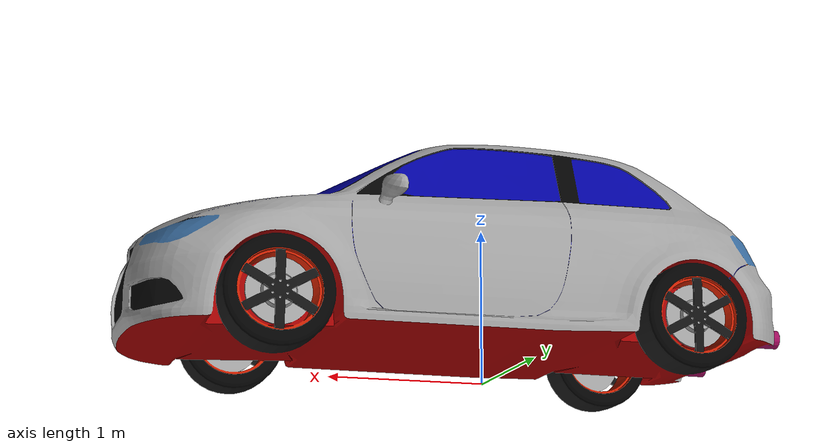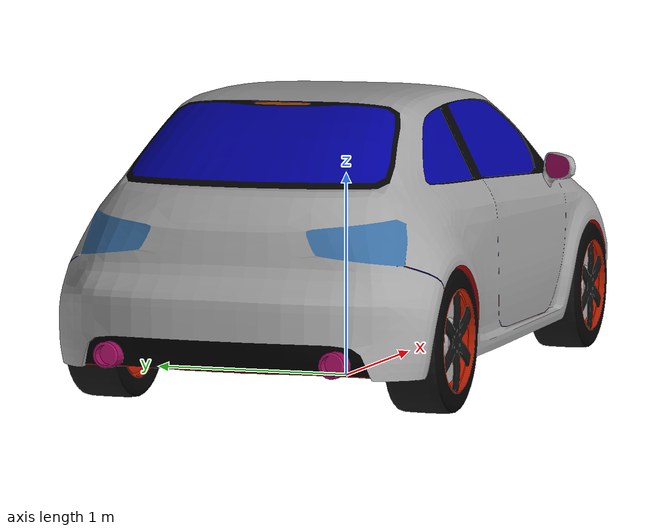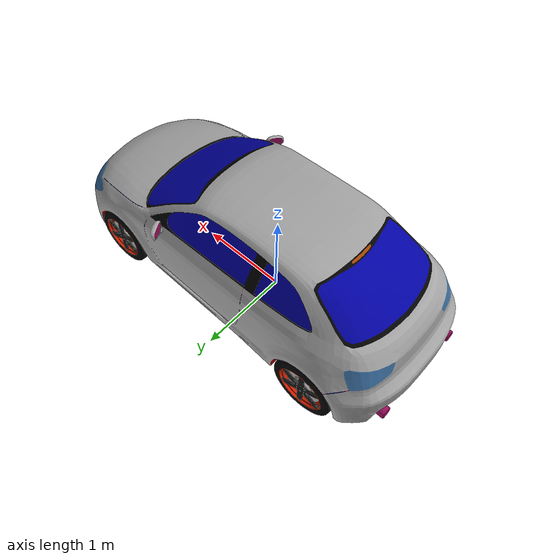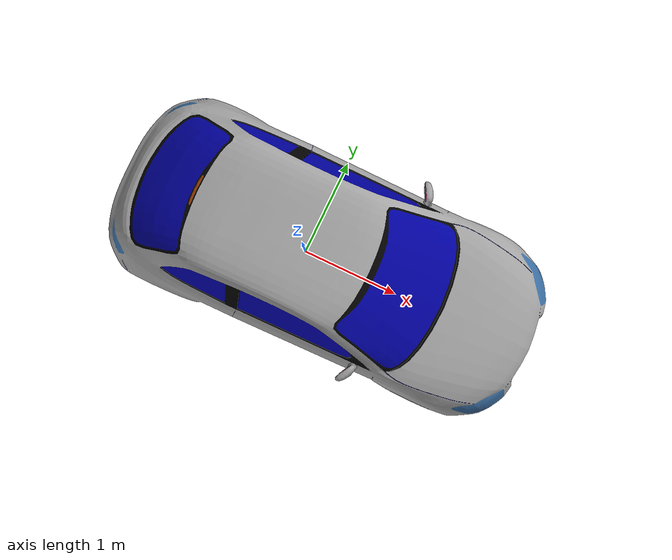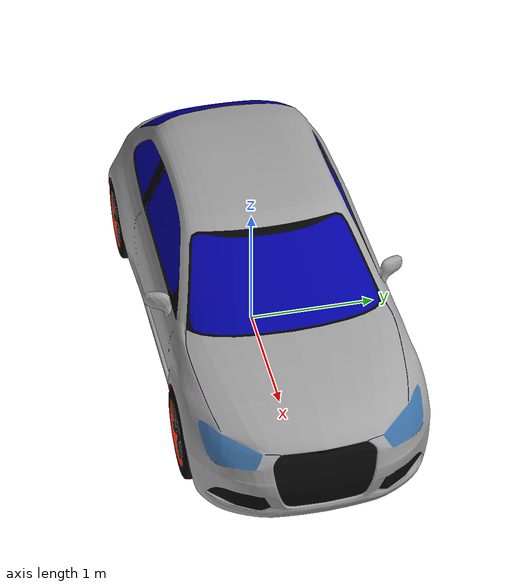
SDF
<?xml version='1.0'?>
<sdf version='1.6'>
  <model name="wild_car">
      <pose>0 0 0 0 0 0</pose>
      <static>true</static>
      <link name="body">
        <visual name="visual">
			<pose>0 0 0 0 0 0</pose>
				  <geometry>
					<mesh><uri>model://wild_car/meshes/wild_car.dae</uri></mesh>
				  </geometry>
		</visual>
		  <collision name="collision">
			<pose>0 0 0  0 0 0</pose>
				<geometry>
					<mesh><uri>model://wild_car/meshes/wild_car.stl</uri></mesh>
				</geometry>
		  </collision>
      </link>
    </model>
</sdf>
